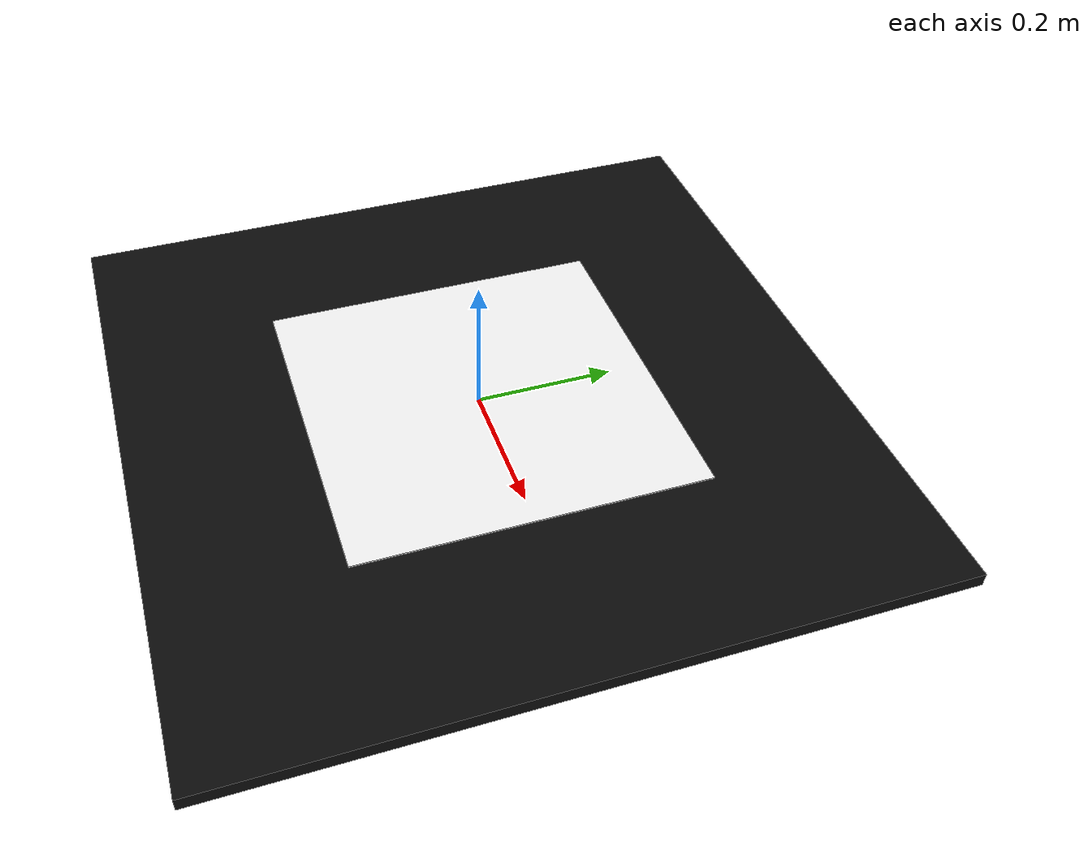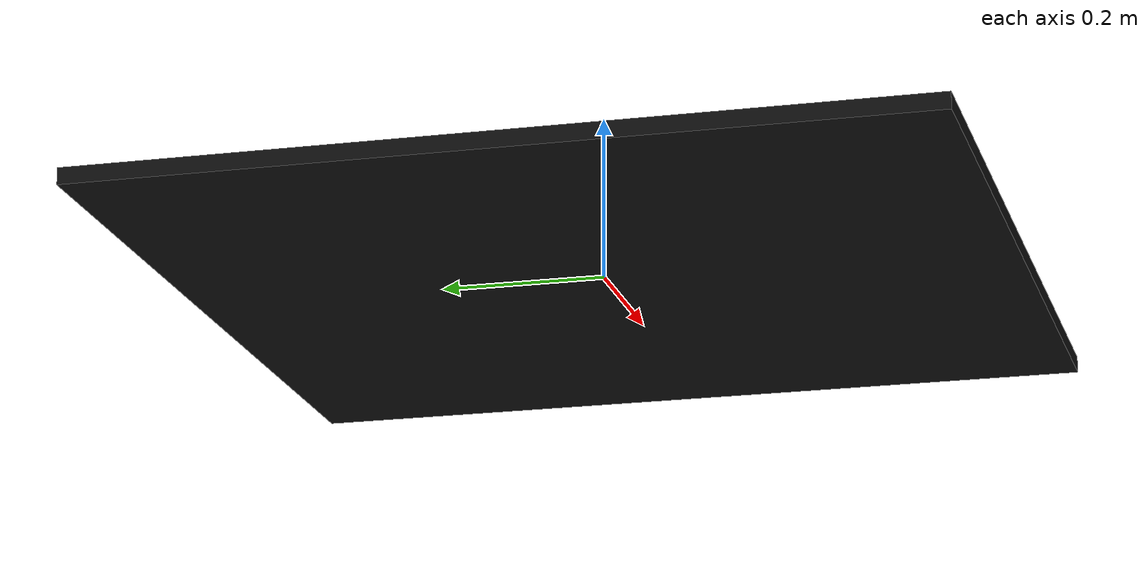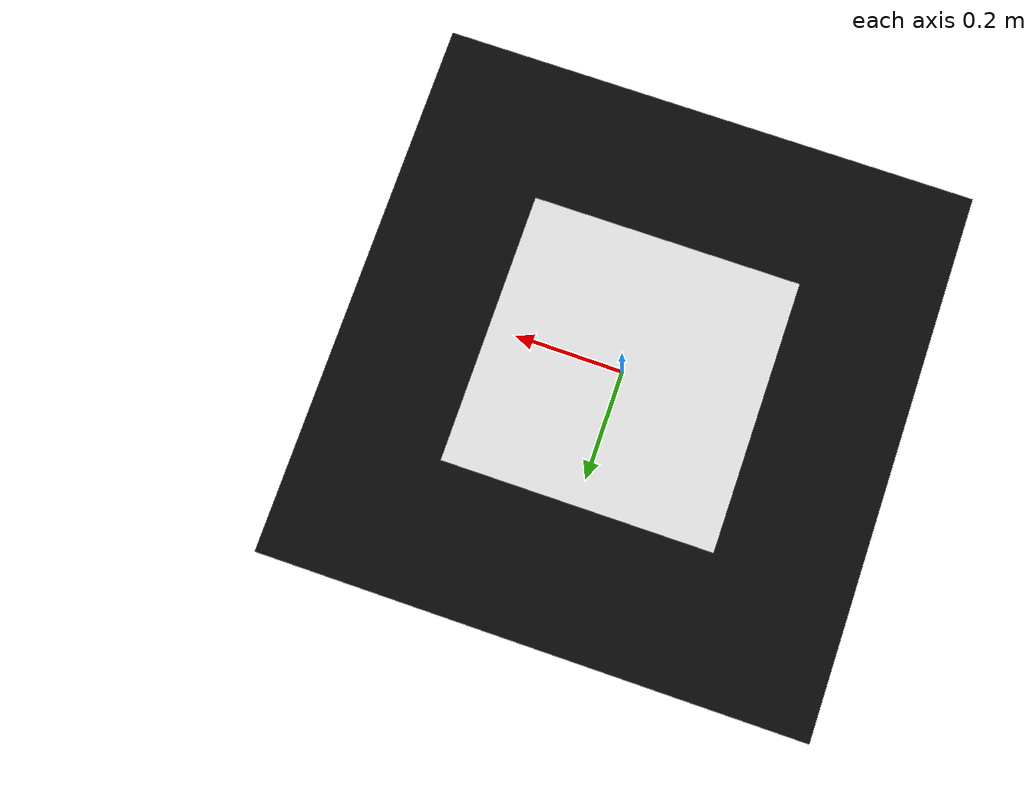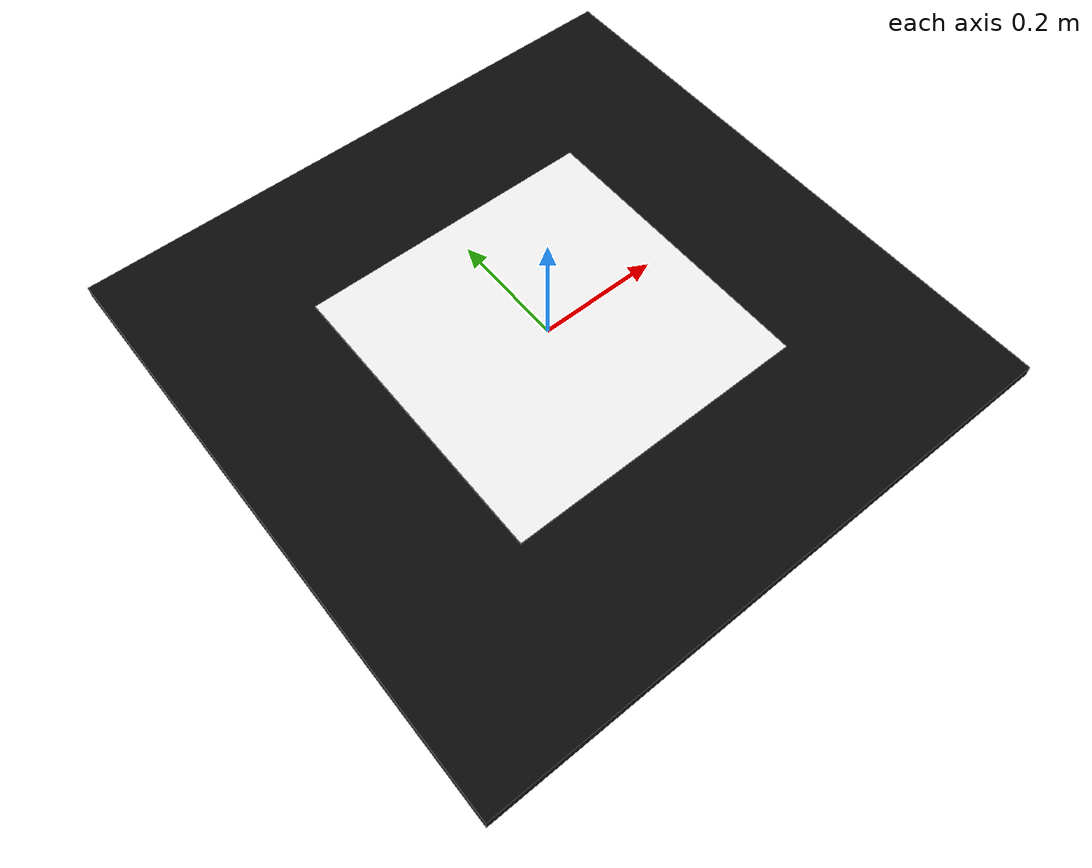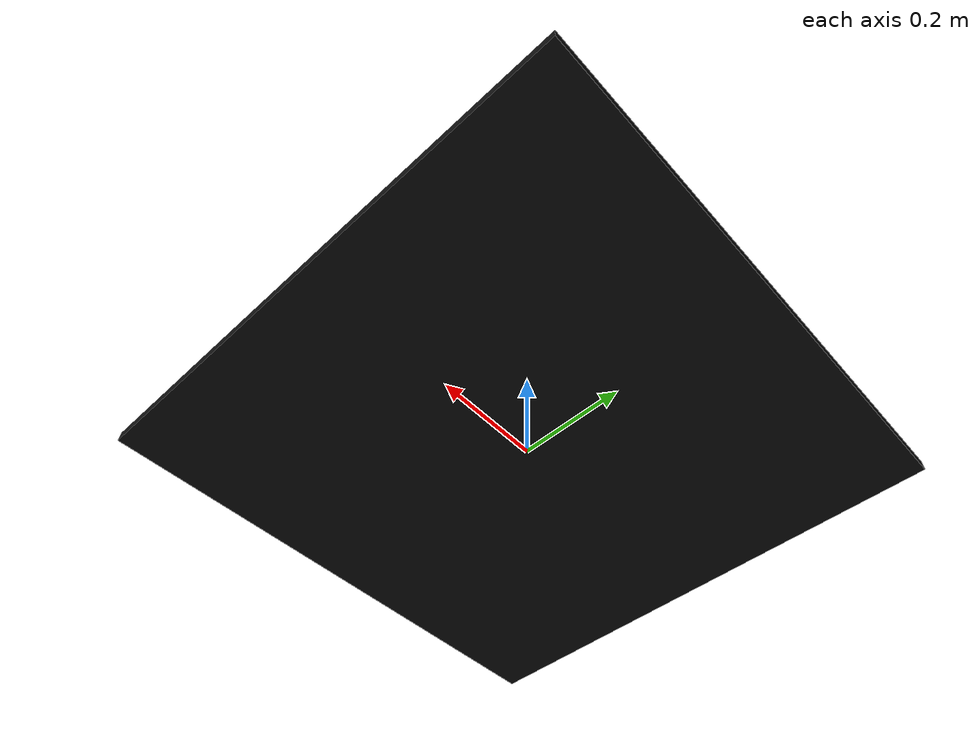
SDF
<?xml version="1.0"?>
<sdf version="1.8">
  <model name="landing_pad">
    <static>true</static>
    <link name="base_link">
      <!-- Dark base pad -->
      <visual name="pad_visual">
        <geometry>
          <box>
            <size>1.0 1.0 0.02</size>
          </box>
        </geometry>
        <material>
          <ambient>0.05 0.05 0.05 1</ambient>
          <diffuse>0.05 0.05 0.05 1</diffuse>
          <specular>0.0 0.0 0.0 1</specular>
        </material>
      </visual>
      <!-- White marker area on top -->
      <visual name="marker_visual">
        <pose>0 0 0.011 0 0 0</pose>
        <geometry>
          <box>
            <size>0.5 0.5 0.002</size>
          </box>
        </geometry>
        <material>
          <ambient>1 1 1 1</ambient>
          <diffuse>1 1 1 1</diffuse>
          <specular>0 0 0 1</specular>
          <pbr>
            <metal>
              <albedo_map>materials/textures/aruco_0.png</albedo_map>
            </metal>
          </pbr>
        </material>
      </visual>
      <collision name="pad_collision">
        <geometry>
          <box>
            <size>1.0 1.0 0.02</size>
          </box>
        </geometry>
      </collision>
    </link>
  </model>
</sdf>
